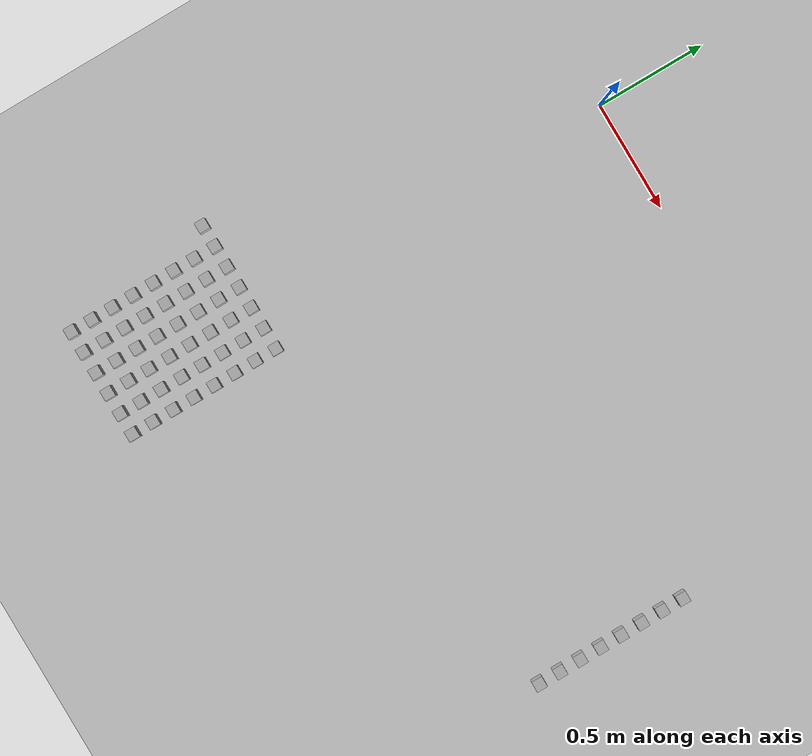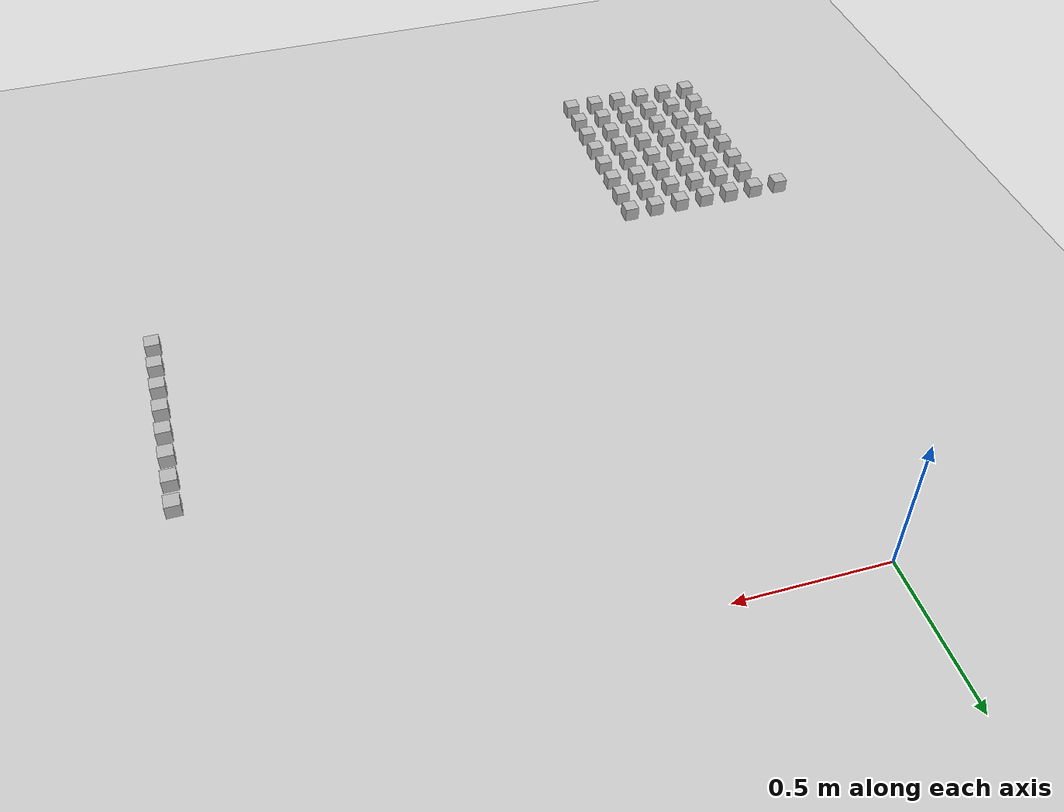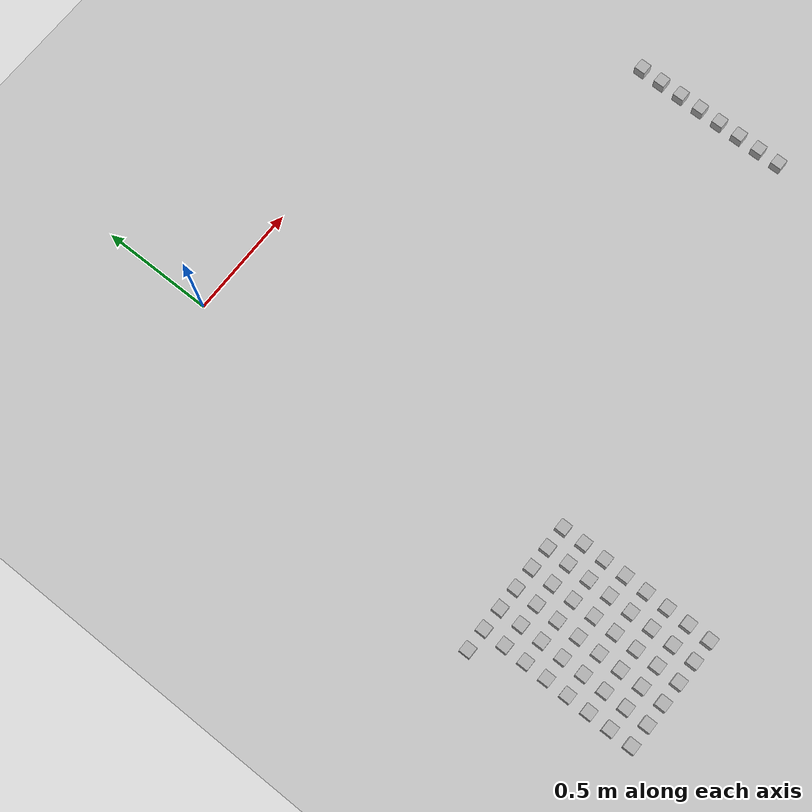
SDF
<sdf version="1.6">
 <world name="default">
  <model name="ground_plane">
   <static>1</static>
   <link name="link">
    <collision name="collision">
     <geometry><plane><normal>0 0 1</normal><size>100 100</size></plane></geometry>
     <surface><friction><ode><mu>100</mu><mu2>50</mu2></ode></friction></surface>
    </collision>
    <visual name="visual">
     <cast_shadows>0</cast_shadows>
     <geometry><plane><normal>0 0 1</normal><size>100 100</size></plane></geometry>
     <material>
      <script><uri>file://media/materials/scripts/gazebo.material</uri><name>Gazebo/Grey</name></script>
     </material>
    </visual>
   </link>
  </model>
  <model name="at256">
   <static>0</static>
   <link name="link">
    <inertial>
     <mass>0.01</mass>
     <inertia><ixx>4e-05</ixx><ixy>0</ixy><ixz>0</ixz><iyy>4e-05</iyy><iyz>0</iyz><izz>4e-05</izz></inertia>
    </inertial>
    <visual name="visual">
     <geometry><box><size>0.05 0.05 0.05</size></box></geometry>
     <material>
      <script>
       <uri>model://at0/materials/scripts</uri>
       <uri>model://at0/materials/textures</uri>
       <name>at0/Diffuse</name>
      </script>
     </material>
    </visual>
    <collision name="collision">
     <geometry><box><size>0.05 0.05 0.05</size></box></geometry>
     <surface><friction><ode><mu>0.8</mu><mu2>0.7</mu2></ode></friction></surface>
    </collision>
   </link>
   <pose>1.95559 -1.46923 0.025 0 -0 0</pose>
  </model>
  <model name="at264">
   <static>0</static>
   <link name="link">
    <inertial>
     <mass>0.01</mass>
     <inertia><ixx>4e-05</ixx><ixy>0</ixy><ixz>0</ixz><iyy>4e-05</iyy><iyz>0</iyz><izz>4e-05</izz></inertia>
    </inertial>
    <visual name="visual">
     <geometry><box><size>0.05 0.05 0.05</size></box></geometry>
     <material>
      <script>
       <uri>model://at0/materials/scripts</uri>
       <uri>model://at0/materials/textures</uri>
       <name>at0/Diffuse</name>
      </script>
     </material>
    </visual>
    <collision name="collision">
     <geometry><box><size>0.05 0.05 0.05</size></box></geometry>
     <surface><friction><ode><mu>0.8</mu><mu2>0.7</mu2></ode></friction></surface>
    </collision>
   </link>
   <pose>1.95559 -1.36923 0.025 0 -0 0</pose>
  </model>
  <model name="at272">
   <static>0</static>
   <link name="link">
    <inertial>
     <mass>0.01</mass>
     <inertia><ixx>4e-05</ixx><ixy>0</ixy><ixz>0</ixz><iyy>4e-05</iyy><iyz>0</iyz><izz>4e-05</izz></inertia>
    </inertial>
    <visual name="visual">
     <geometry><box><size>0.05 0.05 0.05</size></box></geometry>
     <material>
      <script>
       <uri>model://at0/materials/scripts</uri>
       <uri>model://at0/materials/textures</uri>
       <name>at0/Diffuse</name>
      </script>
     </material>
    </visual>
    <collision name="collision">
     <geometry><box><size>0.05 0.05 0.05</size></box></geometry>
     <surface><friction><ode><mu>0.8</mu><mu2>0.7</mu2></ode></friction></surface>
    </collision>
   </link>
   <pose>1.95559 -1.26923 0.025 0 -0 0</pose>
  </model>
  <model name="at280">
   <static>0</static>
   <link name="link">
    <inertial>
     <mass>0.01</mass>
     <inertia><ixx>4e-05</ixx><ixy>0</ixy><ixz>0</ixz><iyy>4e-05</iyy><iyz>0</iyz><izz>4e-05</izz></inertia>
    </inertial>
    <visual name="visual">
     <geometry><box><size>0.05 0.05 0.05</size></box></geometry>
     <material>
      <script>
       <uri>model://at0/materials/scripts</uri>
       <uri>model://at0/materials/textures</uri>
       <name>at0/Diffuse</name>
      </script>
     </material>
    </visual>
    <collision name="collision">
     <geometry><box><size>0.05 0.05 0.05</size></box></geometry>
     <surface><friction><ode><mu>0.8</mu><mu2>0.7</mu2></ode></friction></surface>
    </collision>
   </link>
   <pose>1.95559 -1.16923 0.025 0 -0 0</pose>
  </model>
  <model name="at288">
   <static>0</static>
   <link name="link">
    <inertial>
     <mass>0.01</mass>
     <inertia><ixx>4e-05</ixx><ixy>0</ixy><ixz>0</ixz><iyy>4e-05</iyy><iyz>0</iyz><izz>4e-05</izz></inertia>
    </inertial>
    <visual name="visual">
     <geometry><box><size>0.05 0.05 0.05</size></box></geometry>
     <material>
      <script>
       <uri>model://at0/materials/scripts</uri>
       <uri>model://at0/materials/textures</uri>
       <name>at0/Diffuse</name>
      </script>
     </material>
    </visual>
    <collision name="collision">
     <geometry><box><size>0.05 0.05 0.05</size></box></geometry>
     <surface><friction><ode><mu>0.8</mu><mu2>0.7</mu2></ode></friction></surface>
    </collision>
   </link>
   <pose>1.95559 -1.06923 0.025 0 -0 0</pose>
  </model>
  <model name="at296">
   <static>0</static>
   <link name="link">
    <inertial>
     <mass>0.01</mass>
     <inertia><ixx>4e-05</ixx><ixy>0</ixy><ixz>0</ixz><iyy>4e-05</iyy><iyz>0</iyz><izz>4e-05</izz></inertia>
    </inertial>
    <visual name="visual">
     <geometry><box><size>0.05 0.05 0.05</size></box></geometry>
     <material>
      <script>
       <uri>model://at0/materials/scripts</uri>
       <uri>model://at0/materials/textures</uri>
       <name>at0/Diffuse</name>
      </script>
     </material>
    </visual>
    <collision name="collision">
     <geometry><box><size>0.05 0.05 0.05</size></box></geometry>
     <surface><friction><ode><mu>0.8</mu><mu2>0.7</mu2></ode></friction></surface>
    </collision>
   </link>
   <pose>1.95559 -0.969227 0.025 0 -0 0</pose>
  </model>
  <model name="at304">
   <static>0</static>
   <link name="link">
    <inertial>
     <mass>0.01</mass>
     <inertia><ixx>4e-05</ixx><ixy>0</ixy><ixz>0</ixz><iyy>4e-05</iyy><iyz>0</iyz><izz>4e-05</izz></inertia>
    </inertial>
    <visual name="visual">
     <geometry><box><size>0.05 0.05 0.05</size></box></geometry>
     <material>
      <script>
       <uri>model://at0/materials/scripts</uri>
       <uri>model://at0/materials/textures</uri>
       <name>at0/Diffuse</name>
      </script>
     </material>
    </visual>
    <collision name="collision">
     <geometry><box><size>0.05 0.05 0.05</size></box></geometry>
     <surface><friction><ode><mu>0.8</mu><mu2>0.7</mu2></ode></friction></surface>
    </collision>
   </link>
   <pose>1.95559 -0.869227 0.025 0 -0 0</pose>
  </model>
  <model name="at312">
   <static>0</static>
   <link name="link">
    <inertial>
     <mass>0.01</mass>
     <inertia><ixx>4e-05</ixx><ixy>0</ixy><ixz>0</ixz><iyy>4e-05</iyy><iyz>0</iyz><izz>4e-05</izz></inertia>
    </inertial>
    <visual name="visual">
     <geometry><box><size>0.05 0.05 0.05</size></box></geometry>
     <material>
      <script>
       <uri>model://at0/materials/scripts</uri>
       <uri>model://at0/materials/textures</uri>
       <name>at0/Diffuse</name>
      </script>
     </material>
    </visual>
    <collision name="collision">
     <geometry><box><size>0.05 0.05 0.05</size></box></geometry>
     <surface><friction><ode><mu>0.8</mu><mu2>0.7</mu2></ode></friction></surface>
    </collision>
   </link>
   <pose>1.95559 -0.769227 0.025 0 -0 0</pose>
  </model>
  <model name="at322">
   <static>0</static>
   <link name="link">
    <inertial>
     <mass>0.01</mass>
     <inertia><ixx>4e-05</ixx><ixy>0</ixy><ixz>0</ixz><iyy>4e-05</iyy><iyz>0</iyz><izz>4e-05</izz></inertia>
    </inertial>
    <visual name="visual">
     <geometry><box><size>0.05 0.05 0.05</size></box></geometry>
     <material>
      <script>
       <uri>model://at0/materials/scripts</uri>
       <uri>model://at0/materials/textures</uri>
       <name>at0/Diffuse</name>
      </script>
     </material>
    </visual>
    <collision name="collision">
     <geometry><box><size>0.05 0.05 0.05</size></box></geometry>
     <surface><friction><ode><mu>0.8</mu><mu2>0.7</mu2></ode></friction></surface>
    </collision>
   </link>
   <pose>-0.319724 -2.398 0.025 0 -0 0</pose>
  </model>
  <model name="at323">
   <static>0</static>
   <link name="link">
    <inertial>
     <mass>0.01</mass>
     <inertia><ixx>4e-05</ixx><ixy>0</ixy><ixz>0</ixz><iyy>4e-05</iyy><iyz>0</iyz><izz>4e-05</izz></inertia>
    </inertial>
    <visual name="visual">
     <geometry><box><size>0.05 0.05 0.05</size></box></geometry>
     <material>
      <script>
       <uri>model://at0/materials/scripts</uri>
       <uri>model://at0/materials/textures</uri>
       <name>at0/Diffuse</name>
      </script>
     </material>
    </visual>
    <collision name="collision">
     <geometry><box><size>0.05 0.05 0.05</size></box></geometry>
     <surface><friction><ode><mu>0.8</mu><mu2>0.7</mu2></ode></friction></surface>
    </collision>
   </link>
   <pose>-0.219724 -2.398 0.025 0 -0 0</pose>
  </model>
  <model name="at324">
   <static>0</static>
   <link name="link">
    <inertial>
     <mass>0.01</mass>
     <inertia><ixx>4e-05</ixx><ixy>0</ixy><ixz>0</ixz><iyy>4e-05</iyy><iyz>0</iyz><izz>4e-05</izz></inertia>
    </inertial>
    <visual name="visual">
     <geometry><box><size>0.05 0.05 0.05</size></box></geometry>
     <material>
      <script>
       <uri>model://at0/materials/scripts</uri>
       <uri>model://at0/materials/textures</uri>
       <name>at0/Diffuse</name>
      </script>
     </material>
    </visual>
    <collision name="collision">
     <geometry><box><size>0.05 0.05 0.05</size></box></geometry>
     <surface><friction><ode><mu>0.8</mu><mu2>0.7</mu2></ode></friction></surface>
    </collision>
   </link>
   <pose>-0.119724 -2.398 0.025 0 -0 0</pose>
  </model>
  <model name="at325">
   <static>0</static>
   <link name="link">
    <inertial>
     <mass>0.01</mass>
     <inertia><ixx>4e-05</ixx><ixy>0</ixy><ixz>0</ixz><iyy>4e-05</iyy><iyz>0</iyz><izz>4e-05</izz></inertia>
    </inertial>
    <visual name="visual">
     <geometry><box><size>0.05 0.05 0.05</size></box></geometry>
     <material>
      <script>
       <uri>model://at0/materials/scripts</uri>
       <uri>model://at0/materials/textures</uri>
       <name>at0/Diffuse</name>
      </script>
     </material>
    </visual>
    <collision name="collision">
     <geometry><box><size>0.05 0.05 0.05</size></box></geometry>
     <surface><friction><ode><mu>0.8</mu><mu2>0.7</mu2></ode></friction></surface>
    </collision>
   </link>
   <pose>-0.019724 -2.398 0.025 0 -0 0</pose>
  </model>
  <model name="at326">
   <static>0</static>
   <link name="link">
    <inertial>
     <mass>0.01</mass>
     <inertia><ixx>4e-05</ixx><ixy>0</ixy><ixz>0</ixz><iyy>4e-05</iyy><iyz>0</iyz><izz>4e-05</izz></inertia>
    </inertial>
    <visual name="visual">
     <geometry><box><size>0.05 0.05 0.05</size></box></geometry>
     <material>
      <script>
       <uri>model://at0/materials/scripts</uri>
       <uri>model://at0/materials/textures</uri>
       <name>at0/Diffuse</name>
      </script>
     </material>
    </visual>
    <collision name="collision">
     <geometry><box><size>0.05 0.05 0.05</size></box></geometry>
     <surface><friction><ode><mu>0.8</mu><mu2>0.7</mu2></ode></friction></surface>
    </collision>
   </link>
   <pose>0.080276 -2.398 0.025 0 -0 0</pose>
  </model>
  <model name="at327">
   <static>0</static>
   <link name="link">
    <inertial>
     <mass>0.01</mass>
     <inertia><ixx>4e-05</ixx><ixy>0</ixy><ixz>0</ixz><iyy>4e-05</iyy><iyz>0</iyz><izz>4e-05</izz></inertia>
    </inertial>
    <visual name="visual">
     <geometry><box><size>0.05 0.05 0.05</size></box></geometry>
     <material>
      <script>
       <uri>model://at0/materials/scripts</uri>
       <uri>model://at0/materials/textures</uri>
       <name>at0/Diffuse</name>
      </script>
     </material>
    </visual>
    <collision name="collision">
     <geometry><box><size>0.05 0.05 0.05</size></box></geometry>
     <surface><friction><ode><mu>0.8</mu><mu2>0.7</mu2></ode></friction></surface>
    </collision>
   </link>
   <pose>0.180276 -2.398 0.025 0 -0 0</pose>
  </model>
  <model name="at330">
   <static>0</static>
   <link name="link">
    <inertial>
     <mass>0.01</mass>
     <inertia><ixx>4e-05</ixx><ixy>0</ixy><ixz>0</ixz><iyy>4e-05</iyy><iyz>0</iyz><izz>4e-05</izz></inertia>
    </inertial>
    <visual name="visual">
     <geometry><box><size>0.05 0.05 0.05</size></box></geometry>
     <material>
      <script>
       <uri>model://at0/materials/scripts</uri>
       <uri>model://at0/materials/textures</uri>
       <name>at0/Diffuse</name>
      </script>
     </material>
    </visual>
    <collision name="collision">
     <geometry><box><size>0.05 0.05 0.05</size></box></geometry>
     <surface><friction><ode><mu>0.8</mu><mu2>0.7</mu2></ode></friction></surface>
    </collision>
   </link>
   <pose>-0.319724 -2.298 0.025 0 -0 0</pose>
  </model>
  <model name="at331">
   <static>0</static>
   <link name="link">
    <inertial>
     <mass>0.01</mass>
     <inertia><ixx>4e-05</ixx><ixy>0</ixy><ixz>0</ixz><iyy>4e-05</iyy><iyz>0</iyz><izz>4e-05</izz></inertia>
    </inertial>
    <visual name="visual">
     <geometry><box><size>0.05 0.05 0.05</size></box></geometry>
     <material>
      <script>
       <uri>model://at0/materials/scripts</uri>
       <uri>model://at0/materials/textures</uri>
       <name>at0/Diffuse</name>
      </script>
     </material>
    </visual>
    <collision name="collision">
     <geometry><box><size>0.05 0.05 0.05</size></box></geometry>
     <surface><friction><ode><mu>0.8</mu><mu2>0.7</mu2></ode></friction></surface>
    </collision>
   </link>
   <pose>-0.219724 -2.298 0.025 0 -0 0</pose>
  </model>
  <model name="at332">
   <static>0</static>
   <link name="link">
    <inertial>
     <mass>0.01</mass>
     <inertia><ixx>4e-05</ixx><ixy>0</ixy><ixz>0</ixz><iyy>4e-05</iyy><iyz>0</iyz><izz>4e-05</izz></inertia>
    </inertial>
    <visual name="visual">
     <geometry><box><size>0.05 0.05 0.05</size></box></geometry>
     <material>
      <script>
       <uri>model://at0/materials/scripts</uri>
       <uri>model://at0/materials/textures</uri>
       <name>at0/Diffuse</name>
      </script>
     </material>
    </visual>
    <collision name="collision">
     <geometry><box><size>0.05 0.05 0.05</size></box></geometry>
     <surface><friction><ode><mu>0.8</mu><mu2>0.7</mu2></ode></friction></surface>
    </collision>
   </link>
   <pose>-0.119724 -2.298 0.025 0 -0 0</pose>
  </model>
  <model name="at333">
   <static>0</static>
   <link name="link">
    <inertial>
     <mass>0.01</mass>
     <inertia><ixx>4e-05</ixx><ixy>0</ixy><ixz>0</ixz><iyy>4e-05</iyy><iyz>0</iyz><izz>4e-05</izz></inertia>
    </inertial>
    <visual name="visual">
     <geometry><box><size>0.05 0.05 0.05</size></box></geometry>
     <material>
      <script>
       <uri>model://at0/materials/scripts</uri>
       <uri>model://at0/materials/textures</uri>
       <name>at0/Diffuse</name>
      </script>
     </material>
    </visual>
    <collision name="collision">
     <geometry><box><size>0.05 0.05 0.05</size></box></geometry>
     <surface><friction><ode><mu>0.8</mu><mu2>0.7</mu2></ode></friction></surface>
    </collision>
   </link>
   <pose>-0.019724 -2.298 0.025 0 -0 0</pose>
  </model>
  <model name="at334">
   <static>0</static>
   <link name="link">
    <inertial>
     <mass>0.01</mass>
     <inertia><ixx>4e-05</ixx><ixy>0</ixy><ixz>0</ixz><iyy>4e-05</iyy><iyz>0</iyz><izz>4e-05</izz></inertia>
    </inertial>
    <visual name="visual">
     <geometry><box><size>0.05 0.05 0.05</size></box></geometry>
     <material>
      <script>
       <uri>model://at0/materials/scripts</uri>
       <uri>model://at0/materials/textures</uri>
       <name>at0/Diffuse</name>
      </script>
     </material>
    </visual>
    <collision name="collision">
     <geometry><box><size>0.05 0.05 0.05</size></box></geometry>
     <surface><friction><ode><mu>0.8</mu><mu2>0.7</mu2></ode></friction></surface>
    </collision>
   </link>
   <pose>0.080276 -2.298 0.025 0 -0 0</pose>
  </model>
  <model name="at335">
   <static>0</static>
   <link name="link">
    <inertial>
     <mass>0.01</mass>
     <inertia><ixx>4e-05</ixx><ixy>0</ixy><ixz>0</ixz><iyy>4e-05</iyy><iyz>0</iyz><izz>4e-05</izz></inertia>
    </inertial>
    <visual name="visual">
     <geometry><box><size>0.05 0.05 0.05</size></box></geometry>
     <material>
      <script>
       <uri>model://at0/materials/scripts</uri>
       <uri>model://at0/materials/textures</uri>
       <name>at0/Diffuse</name>
      </script>
     </material>
    </visual>
    <collision name="collision">
     <geometry><box><size>0.05 0.05 0.05</size></box></geometry>
     <surface><friction><ode><mu>0.8</mu><mu2>0.7</mu2></ode></friction></surface>
    </collision>
   </link>
   <pose>0.180276 -2.298 0.025 0 -0 0</pose>
  </model>
  <model name="at338">
   <static>0</static>
   <link name="link">
    <inertial>
     <mass>0.01</mass>
     <inertia><ixx>4e-05</ixx><ixy>0</ixy><ixz>0</ixz><iyy>4e-05</iyy><iyz>0</iyz><izz>4e-05</izz></inertia>
    </inertial>
    <visual name="visual">
     <geometry><box><size>0.05 0.05 0.05</size></box></geometry>
     <material>
      <script>
       <uri>model://at0/materials/scripts</uri>
       <uri>model://at0/materials/textures</uri>
       <name>at0/Diffuse</name>
      </script>
     </material>
    </visual>
    <collision name="collision">
     <geometry><box><size>0.05 0.05 0.05</size></box></geometry>
     <surface><friction><ode><mu>0.8</mu><mu2>0.7</mu2></ode></friction></surface>
    </collision>
   </link>
   <pose>-0.319724 -2.198 0.025 0 -0 0</pose>
  </model>
  <model name="at339">
   <static>0</static>
   <link name="link">
    <inertial>
     <mass>0.01</mass>
     <inertia><ixx>4e-05</ixx><ixy>0</ixy><ixz>0</ixz><iyy>4e-05</iyy><iyz>0</iyz><izz>4e-05</izz></inertia>
    </inertial>
    <visual name="visual">
     <geometry><box><size>0.05 0.05 0.05</size></box></geometry>
     <material>
      <script>
       <uri>model://at0/materials/scripts</uri>
       <uri>model://at0/materials/textures</uri>
       <name>at0/Diffuse</name>
      </script>
     </material>
    </visual>
    <collision name="collision">
     <geometry><box><size>0.05 0.05 0.05</size></box></geometry>
     <surface><friction><ode><mu>0.8</mu><mu2>0.7</mu2></ode></friction></surface>
    </collision>
   </link>
   <pose>-0.219724 -2.198 0.025 0 -0 0</pose>
  </model>
  <model name="at340">
   <static>0</static>
   <link name="link">
    <inertial>
     <mass>0.01</mass>
     <inertia><ixx>4e-05</ixx><ixy>0</ixy><ixz>0</ixz><iyy>4e-05</iyy><iyz>0</iyz><izz>4e-05</izz></inertia>
    </inertial>
    <visual name="visual">
     <geometry><box><size>0.05 0.05 0.05</size></box></geometry>
     <material>
      <script>
       <uri>model://at0/materials/scripts</uri>
       <uri>model://at0/materials/textures</uri>
       <name>at0/Diffuse</name>
      </script>
     </material>
    </visual>
    <collision name="collision">
     <geometry><box><size>0.05 0.05 0.05</size></box></geometry>
     <surface><friction><ode><mu>0.8</mu><mu2>0.7</mu2></ode></friction></surface>
    </collision>
   </link>
   <pose>-0.119724 -2.198 0.025 0 -0 0</pose>
  </model>
  <model name="at341">
   <static>0</static>
   <link name="link">
    <inertial>
     <mass>0.01</mass>
     <inertia><ixx>4e-05</ixx><ixy>0</ixy><ixz>0</ixz><iyy>4e-05</iyy><iyz>0</iyz><izz>4e-05</izz></inertia>
    </inertial>
    <visual name="visual">
     <geometry><box><size>0.05 0.05 0.05</size></box></geometry>
     <material>
      <script>
       <uri>model://at0/materials/scripts</uri>
       <uri>model://at0/materials/textures</uri>
       <name>at0/Diffuse</name>
      </script>
     </material>
    </visual>
    <collision name="collision">
     <geometry><box><size>0.05 0.05 0.05</size></box></geometry>
     <surface><friction><ode><mu>0.8</mu><mu2>0.7</mu2></ode></friction></surface>
    </collision>
   </link>
   <pose>-0.019724 -2.198 0.025 0 -0 0</pose>
  </model>
  <model name="at342">
   <static>0</static>
   <link name="link">
    <inertial>
     <mass>0.01</mass>
     <inertia><ixx>4e-05</ixx><ixy>0</ixy><ixz>0</ixz><iyy>4e-05</iyy><iyz>0</iyz><izz>4e-05</izz></inertia>
    </inertial>
    <visual name="visual">
     <geometry><box><size>0.05 0.05 0.05</size></box></geometry>
     <material>
      <script>
       <uri>model://at0/materials/scripts</uri>
       <uri>model://at0/materials/textures</uri>
       <name>at0/Diffuse</name>
      </script>
     </material>
    </visual>
    <collision name="collision">
     <geometry><box><size>0.05 0.05 0.05</size></box></geometry>
     <surface><friction><ode><mu>0.8</mu><mu2>0.7</mu2></ode></friction></surface>
    </collision>
   </link>
   <pose>0.080276 -2.198 0.025 0 -0 0</pose>
  </model>
  <model name="at343">
   <static>0</static>
   <link name="link">
    <inertial>
     <mass>0.01</mass>
     <inertia><ixx>4e-05</ixx><ixy>0</ixy><ixz>0</ixz><iyy>4e-05</iyy><iyz>0</iyz><izz>4e-05</izz></inertia>
    </inertial>
    <visual name="visual">
     <geometry><box><size>0.05 0.05 0.05</size></box></geometry>
     <material>
      <script>
       <uri>model://at0/materials/scripts</uri>
       <uri>model://at0/materials/textures</uri>
       <name>at0/Diffuse</name>
      </script>
     </material>
    </visual>
    <collision name="collision">
     <geometry><box><size>0.05 0.05 0.05</size></box></geometry>
     <surface><friction><ode><mu>0.8</mu><mu2>0.7</mu2></ode></friction></surface>
    </collision>
   </link>
   <pose>0.180276 -2.198 0.025 0 -0 0</pose>
  </model>
  <model name="at346">
   <static>0</static>
   <link name="link">
    <inertial>
     <mass>0.01</mass>
     <inertia><ixx>4e-05</ixx><ixy>0</ixy><ixz>0</ixz><iyy>4e-05</iyy><iyz>0</iyz><izz>4e-05</izz></inertia>
    </inertial>
    <visual name="visual">
     <geometry><box><size>0.05 0.05 0.05</size></box></geometry>
     <material>
      <script>
       <uri>model://at0/materials/scripts</uri>
       <uri>model://at0/materials/textures</uri>
       <name>at0/Diffuse</name>
      </script>
     </material>
    </visual>
    <collision name="collision">
     <geometry><box><size>0.05 0.05 0.05</size></box></geometry>
     <surface><friction><ode><mu>0.8</mu><mu2>0.7</mu2></ode></friction></surface>
    </collision>
   </link>
   <pose>-0.319724 -2.098 0.025 0 -0 0</pose>
  </model>
  <model name="at347">
   <static>0</static>
   <link name="link">
    <inertial>
     <mass>0.01</mass>
     <inertia><ixx>4e-05</ixx><ixy>0</ixy><ixz>0</ixz><iyy>4e-05</iyy><iyz>0</iyz><izz>4e-05</izz></inertia>
    </inertial>
    <visual name="visual">
     <geometry><box><size>0.05 0.05 0.05</size></box></geometry>
     <material>
      <script>
       <uri>model://at0/materials/scripts</uri>
       <uri>model://at0/materials/textures</uri>
       <name>at0/Diffuse</name>
      </script>
     </material>
    </visual>
    <collision name="collision">
     <geometry><box><size>0.05 0.05 0.05</size></box></geometry>
     <surface><friction><ode><mu>0.8</mu><mu2>0.7</mu2></ode></friction></surface>
    </collision>
   </link>
   <pose>-0.219724 -2.098 0.025 0 -0 0</pose>
  </model>
  <model name="at348">
   <static>0</static>
   <link name="link">
    <inertial>
     <mass>0.01</mass>
     <inertia><ixx>4e-05</ixx><ixy>0</ixy><ixz>0</ixz><iyy>4e-05</iyy><iyz>0</iyz><izz>4e-05</izz></inertia>
    </inertial>
    <visual name="visual">
     <geometry><box><size>0.05 0.05 0.05</size></box></geometry>
     <material>
      <script>
       <uri>model://at0/materials/scripts</uri>
       <uri>model://at0/materials/textures</uri>
       <name>at0/Diffuse</name>
      </script>
     </material>
    </visual>
    <collision name="collision">
     <geometry><box><size>0.05 0.05 0.05</size></box></geometry>
     <surface><friction><ode><mu>0.8</mu><mu2>0.7</mu2></ode></friction></surface>
    </collision>
   </link>
   <pose>-0.119724 -2.098 0.025 0 -0 0</pose>
  </model>
  <model name="at349">
   <static>0</static>
   <link name="link">
    <inertial>
     <mass>0.01</mass>
     <inertia><ixx>4e-05</ixx><ixy>0</ixy><ixz>0</ixz><iyy>4e-05</iyy><iyz>0</iyz><izz>4e-05</izz></inertia>
    </inertial>
    <visual name="visual">
     <geometry><box><size>0.05 0.05 0.05</size></box></geometry>
     <material>
      <script>
       <uri>model://at0/materials/scripts</uri>
       <uri>model://at0/materials/textures</uri>
       <name>at0/Diffuse</name>
      </script>
     </material>
    </visual>
    <collision name="collision">
     <geometry><box><size>0.05 0.05 0.05</size></box></geometry>
     <surface><friction><ode><mu>0.8</mu><mu2>0.7</mu2></ode></friction></surface>
    </collision>
   </link>
   <pose>-0.019724 -2.098 0.025 0 -0 0</pose>
  </model>
  <model name="at350">
   <static>0</static>
   <link name="link">
    <inertial>
     <mass>0.01</mass>
     <inertia><ixx>4e-05</ixx><ixy>0</ixy><ixz>0</ixz><iyy>4e-05</iyy><iyz>0</iyz><izz>4e-05</izz></inertia>
    </inertial>
    <visual name="visual">
     <geometry><box><size>0.05 0.05 0.05</size></box></geometry>
     <material>
      <script>
       <uri>model://at0/materials/scripts</uri>
       <uri>model://at0/materials/textures</uri>
       <name>at0/Diffuse</name>
      </script>
     </material>
    </visual>
    <collision name="collision">
     <geometry><box><size>0.05 0.05 0.05</size></box></geometry>
     <surface><friction><ode><mu>0.8</mu><mu2>0.7</mu2></ode></friction></surface>
    </collision>
   </link>
   <pose>0.080276 -2.098 0.025 0 -0 0</pose>
  </model>
  <model name="at351">
   <static>0</static>
   <link name="link">
    <inertial>
     <mass>0.01</mass>
     <inertia><ixx>4e-05</ixx><ixy>0</ixy><ixz>0</ixz><iyy>4e-05</iyy><iyz>0</iyz><izz>4e-05</izz></inertia>
    </inertial>
    <visual name="visual">
     <geometry><box><size>0.05 0.05 0.05</size></box></geometry>
     <material>
      <script>
       <uri>model://at0/materials/scripts</uri>
       <uri>model://at0/materials/textures</uri>
       <name>at0/Diffuse</name>
      </script>
     </material>
    </visual>
    <collision name="collision">
     <geometry><box><size>0.05 0.05 0.05</size></box></geometry>
     <surface><friction><ode><mu>0.8</mu><mu2>0.7</mu2></ode></friction></surface>
    </collision>
   </link>
   <pose>0.180276 -2.098 0.025 0 -0 0</pose>
  </model>
  <model name="at354">
   <static>0</static>
   <link name="link">
    <inertial>
     <mass>0.01</mass>
     <inertia><ixx>4e-05</ixx><ixy>0</ixy><ixz>0</ixz><iyy>4e-05</iyy><iyz>0</iyz><izz>4e-05</izz></inertia>
    </inertial>
    <visual name="visual">
     <geometry><box><size>0.05 0.05 0.05</size></box></geometry>
     <material>
      <script>
       <uri>model://at0/materials/scripts</uri>
       <uri>model://at0/materials/textures</uri>
       <name>at0/Diffuse</name>
      </script>
     </material>
    </visual>
    <collision name="collision">
     <geometry><box><size>0.05 0.05 0.05</size></box></geometry>
     <surface><friction><ode><mu>0.8</mu><mu2>0.7</mu2></ode></friction></surface>
    </collision>
   </link>
   <pose>-0.319724 -1.998 0.025 0 -0 0</pose>
  </model>
  <model name="at355">
   <static>0</static>
   <link name="link">
    <inertial>
     <mass>0.01</mass>
     <inertia><ixx>4e-05</ixx><ixy>0</ixy><ixz>0</ixz><iyy>4e-05</iyy><iyz>0</iyz><izz>4e-05</izz></inertia>
    </inertial>
    <visual name="visual">
     <geometry><box><size>0.05 0.05 0.05</size></box></geometry>
     <material>
      <script>
       <uri>model://at0/materials/scripts</uri>
       <uri>model://at0/materials/textures</uri>
       <name>at0/Diffuse</name>
      </script>
     </material>
    </visual>
    <collision name="collision">
     <geometry><box><size>0.05 0.05 0.05</size></box></geometry>
     <surface><friction><ode><mu>0.8</mu><mu2>0.7</mu2></ode></friction></surface>
    </collision>
   </link>
   <pose>-0.219724 -1.998 0.025 0 -0 0</pose>
  </model>
  <model name="at356">
   <static>0</static>
   <link name="link">
    <inertial>
     <mass>0.01</mass>
     <inertia><ixx>4e-05</ixx><ixy>0</ixy><ixz>0</ixz><iyy>4e-05</iyy><iyz>0</iyz><izz>4e-05</izz></inertia>
    </inertial>
    <visual name="visual">
     <geometry><box><size>0.05 0.05 0.05</size></box></geometry>
     <material>
      <script>
       <uri>model://at0/materials/scripts</uri>
       <uri>model://at0/materials/textures</uri>
       <name>at0/Diffuse</name>
      </script>
     </material>
    </visual>
    <collision name="collision">
     <geometry><box><size>0.05 0.05 0.05</size></box></geometry>
     <surface><friction><ode><mu>0.8</mu><mu2>0.7</mu2></ode></friction></surface>
    </collision>
   </link>
   <pose>-0.119724 -1.998 0.025 0 -0 0</pose>
  </model>
  <model name="at357">
   <static>0</static>
   <link name="link">
    <inertial>
     <mass>0.01</mass>
     <inertia><ixx>4e-05</ixx><ixy>0</ixy><ixz>0</ixz><iyy>4e-05</iyy><iyz>0</iyz><izz>4e-05</izz></inertia>
    </inertial>
    <visual name="visual">
     <geometry><box><size>0.05 0.05 0.05</size></box></geometry>
     <material>
      <script>
       <uri>model://at0/materials/scripts</uri>
       <uri>model://at0/materials/textures</uri>
       <name>at0/Diffuse</name>
      </script>
     </material>
    </visual>
    <collision name="collision">
     <geometry><box><size>0.05 0.05 0.05</size></box></geometry>
     <surface><friction><ode><mu>0.8</mu><mu2>0.7</mu2></ode></friction></surface>
    </collision>
   </link>
   <pose>-0.019724 -1.998 0.025 0 -0 0</pose>
  </model>
  <model name="at358">
   <static>0</static>
   <link name="link">
    <inertial>
     <mass>0.01</mass>
     <inertia><ixx>4e-05</ixx><ixy>0</ixy><ixz>0</ixz><iyy>4e-05</iyy><iyz>0</iyz><izz>4e-05</izz></inertia>
    </inertial>
    <visual name="visual">
     <geometry><box><size>0.05 0.05 0.05</size></box></geometry>
     <material>
      <script>
       <uri>model://at0/materials/scripts</uri>
       <uri>model://at0/materials/textures</uri>
       <name>at0/Diffuse</name>
      </script>
     </material>
    </visual>
    <collision name="collision">
     <geometry><box><size>0.05 0.05 0.05</size></box></geometry>
     <surface><friction><ode><mu>0.8</mu><mu2>0.7</mu2></ode></friction></surface>
    </collision>
   </link>
   <pose>0.080276 -1.998 0.025 0 -0 0</pose>
  </model>
  <model name="at359">
   <static>0</static>
   <link name="link">
    <inertial>
     <mass>0.01</mass>
     <inertia><ixx>4e-05</ixx><ixy>0</ixy><ixz>0</ixz><iyy>4e-05</iyy><iyz>0</iyz><izz>4e-05</izz></inertia>
    </inertial>
    <visual name="visual">
     <geometry><box><size>0.05 0.05 0.05</size></box></geometry>
     <material>
      <script>
       <uri>model://at0/materials/scripts</uri>
       <uri>model://at0/materials/textures</uri>
       <name>at0/Diffuse</name>
      </script>
     </material>
    </visual>
    <collision name="collision">
     <geometry><box><size>0.05 0.05 0.05</size></box></geometry>
     <surface><friction><ode><mu>0.8</mu><mu2>0.7</mu2></ode></friction></surface>
    </collision>
   </link>
   <pose>0.180276 -1.998 0.025 0 -0 0</pose>
  </model>
  <model name="at362">
   <static>0</static>
   <link name="link">
    <inertial>
     <mass>0.01</mass>
     <inertia><ixx>4e-05</ixx><ixy>0</ixy><ixz>0</ixz><iyy>4e-05</iyy><iyz>0</iyz><izz>4e-05</izz></inertia>
    </inertial>
    <visual name="visual">
     <geometry><box><size>0.05 0.05 0.05</size></box></geometry>
     <material>
      <script>
       <uri>model://at0/materials/scripts</uri>
       <uri>model://at0/materials/textures</uri>
       <name>at0/Diffuse</name>
      </script>
     </material>
    </visual>
    <collision name="collision">
     <geometry><box><size>0.05 0.05 0.05</size></box></geometry>
     <surface><friction><ode><mu>0.8</mu><mu2>0.7</mu2></ode></friction></surface>
    </collision>
   </link>
   <pose>-0.319724 -1.898 0.025 0 -0 0</pose>
  </model>
  <model name="at363">
   <static>0</static>
   <link name="link">
    <inertial>
     <mass>0.01</mass>
     <inertia><ixx>4e-05</ixx><ixy>0</ixy><ixz>0</ixz><iyy>4e-05</iyy><iyz>0</iyz><izz>4e-05</izz></inertia>
    </inertial>
    <visual name="visual">
     <geometry><box><size>0.05 0.05 0.05</size></box></geometry>
     <material>
      <script>
       <uri>model://at0/materials/scripts</uri>
       <uri>model://at0/materials/textures</uri>
       <name>at0/Diffuse</name>
      </script>
     </material>
    </visual>
    <collision name="collision">
     <geometry><box><size>0.05 0.05 0.05</size></box></geometry>
     <surface><friction><ode><mu>0.8</mu><mu2>0.7</mu2></ode></friction></surface>
    </collision>
   </link>
   <pose>-0.219724 -1.898 0.025 0 -0 0</pose>
  </model>
  <model name="at364">
   <static>0</static>
   <link name="link">
    <inertial>
     <mass>0.01</mass>
     <inertia><ixx>4e-05</ixx><ixy>0</ixy><ixz>0</ixz><iyy>4e-05</iyy><iyz>0</iyz><izz>4e-05</izz></inertia>
    </inertial>
    <visual name="visual">
     <geometry><box><size>0.05 0.05 0.05</size></box></geometry>
     <material>
      <script>
       <uri>model://at0/materials/scripts</uri>
       <uri>model://at0/materials/textures</uri>
       <name>at0/Diffuse</name>
      </script>
     </material>
    </visual>
    <collision name="collision">
     <geometry><box><size>0.05 0.05 0.05</size></box></geometry>
     <surface><friction><ode><mu>0.8</mu><mu2>0.7</mu2></ode></friction></surface>
    </collision>
   </link>
   <pose>-0.119724 -1.898 0.025 0 -0 0</pose>
  </model>
  <model name="at365">
   <static>0</static>
   <link name="link">
    <inertial>
     <mass>0.01</mass>
     <inertia><ixx>4e-05</ixx><ixy>0</ixy><ixz>0</ixz><iyy>4e-05</iyy><iyz>0</iyz><izz>4e-05</izz></inertia>
    </inertial>
    <visual name="visual">
     <geometry><box><size>0.05 0.05 0.05</size></box></geometry>
     <material>
      <script>
       <uri>model://at0/materials/scripts</uri>
       <uri>model://at0/materials/textures</uri>
       <name>at0/Diffuse</name>
      </script>
     </material>
    </visual>
    <collision name="collision">
     <geometry><box><size>0.05 0.05 0.05</size></box></geometry>
     <surface><friction><ode><mu>0.8</mu><mu2>0.7</mu2></ode></friction></surface>
    </collision>
   </link>
   <pose>-0.019724 -1.898 0.025 0 -0 0</pose>
  </model>
  <model name="at366">
   <static>0</static>
   <link name="link">
    <inertial>
     <mass>0.01</mass>
     <inertia><ixx>4e-05</ixx><ixy>0</ixy><ixz>0</ixz><iyy>4e-05</iyy><iyz>0</iyz><izz>4e-05</izz></inertia>
    </inertial>
    <visual name="visual">
     <geometry><box><size>0.05 0.05 0.05</size></box></geometry>
     <material>
      <script>
       <uri>model://at0/materials/scripts</uri>
       <uri>model://at0/materials/textures</uri>
       <name>at0/Diffuse</name>
      </script>
     </material>
    </visual>
    <collision name="collision">
     <geometry><box><size>0.05 0.05 0.05</size></box></geometry>
     <surface><friction><ode><mu>0.8</mu><mu2>0.7</mu2></ode></friction></surface>
    </collision>
   </link>
   <pose>0.080276 -1.898 0.025 0 -0 0</pose>
  </model>
  <model name="at367">
   <static>0</static>
   <link name="link">
    <inertial>
     <mass>0.01</mass>
     <inertia><ixx>4e-05</ixx><ixy>0</ixy><ixz>0</ixz><iyy>4e-05</iyy><iyz>0</iyz><izz>4e-05</izz></inertia>
    </inertial>
    <visual name="visual">
     <geometry><box><size>0.05 0.05 0.05</size></box></geometry>
     <material>
      <script>
       <uri>model://at0/materials/scripts</uri>
       <uri>model://at0/materials/textures</uri>
       <name>at0/Diffuse</name>
      </script>
     </material>
    </visual>
    <collision name="collision">
     <geometry><box><size>0.05 0.05 0.05</size></box></geometry>
     <surface><friction><ode><mu>0.8</mu><mu2>0.7</mu2></ode></friction></surface>
    </collision>
   </link>
   <pose>0.180276 -1.898 0.025 0 -0 0</pose>
  </model>
  <model name="at370">
   <static>0</static>
   <link name="link">
    <inertial>
     <mass>0.01</mass>
     <inertia><ixx>4e-05</ixx><ixy>0</ixy><ixz>0</ixz><iyy>4e-05</iyy><iyz>0</iyz><izz>4e-05</izz></inertia>
    </inertial>
    <visual name="visual">
     <geometry><box><size>0.05 0.05 0.05</size></box></geometry>
     <material>
      <script>
       <uri>model://at0/materials/scripts</uri>
       <uri>model://at0/materials/textures</uri>
       <name>at0/Diffuse</name>
      </script>
     </material>
    </visual>
    <collision name="collision">
     <geometry><box><size>0.05 0.05 0.05</size></box></geometry>
     <surface><friction><ode><mu>0.8</mu><mu2>0.7</mu2></ode></friction></surface>
    </collision>
   </link>
   <pose>-0.319724 -1.798 0.025 0 -0 0</pose>
  </model>
  <model name="at371">
   <static>0</static>
   <link name="link">
    <inertial>
     <mass>0.01</mass>
     <inertia><ixx>4e-05</ixx><ixy>0</ixy><ixz>0</ixz><iyy>4e-05</iyy><iyz>0</iyz><izz>4e-05</izz></inertia>
    </inertial>
    <visual name="visual">
     <geometry><box><size>0.05 0.05 0.05</size></box></geometry>
     <material>
      <script>
       <uri>model://at0/materials/scripts</uri>
       <uri>model://at0/materials/textures</uri>
       <name>at0/Diffuse</name>
      </script>
     </material>
    </visual>
    <collision name="collision">
     <geometry><box><size>0.05 0.05 0.05</size></box></geometry>
     <surface><friction><ode><mu>0.8</mu><mu2>0.7</mu2></ode></friction></surface>
    </collision>
   </link>
   <pose>-0.219724 -1.798 0.025 0 -0 0</pose>
  </model>
  <model name="at372">
   <static>0</static>
   <link name="link">
    <inertial>
     <mass>0.01</mass>
     <inertia><ixx>4e-05</ixx><ixy>0</ixy><ixz>0</ixz><iyy>4e-05</iyy><iyz>0</iyz><izz>4e-05</izz></inertia>
    </inertial>
    <visual name="visual">
     <geometry><box><size>0.05 0.05 0.05</size></box></geometry>
     <material>
      <script>
       <uri>model://at0/materials/scripts</uri>
       <uri>model://at0/materials/textures</uri>
       <name>at0/Diffuse</name>
      </script>
     </material>
    </visual>
    <collision name="collision">
     <geometry><box><size>0.05 0.05 0.05</size></box></geometry>
     <surface><friction><ode><mu>0.8</mu><mu2>0.7</mu2></ode></friction></surface>
    </collision>
   </link>
   <pose>-0.119724 -1.798 0.025 0 -0 0</pose>
  </model>
  <model name="at373">
   <static>0</static>
   <link name="link">
    <inertial>
     <mass>0.01</mass>
     <inertia><ixx>4e-05</ixx><ixy>0</ixy><ixz>0</ixz><iyy>4e-05</iyy><iyz>0</iyz><izz>4e-05</izz></inertia>
    </inertial>
    <visual name="visual">
     <geometry><box><size>0.05 0.05 0.05</size></box></geometry>
     <material>
      <script>
       <uri>model://at0/materials/scripts</uri>
       <uri>model://at0/materials/textures</uri>
       <name>at0/Diffuse</name>
      </script>
     </material>
    </visual>
    <collision name="collision">
     <geometry><box><size>0.05 0.05 0.05</size></box></geometry>
     <surface><friction><ode><mu>0.8</mu><mu2>0.7</mu2></ode></friction></surface>
    </collision>
   </link>
   <pose>-0.019724 -1.798 0.025 0 -0 0</pose>
  </model>
  <model name="at374">
   <static>0</static>
   <link name="link">
    <inertial>
     <mass>0.01</mass>
     <inertia><ixx>4e-05</ixx><ixy>0</ixy><ixz>0</ixz><iyy>4e-05</iyy><iyz>0</iyz><izz>4e-05</izz></inertia>
    </inertial>
    <visual name="visual">
     <geometry><box><size>0.05 0.05 0.05</size></box></geometry>
     <material>
      <script>
       <uri>model://at0/materials/scripts</uri>
       <uri>model://at0/materials/textures</uri>
       <name>at0/Diffuse</name>
      </script>
     </material>
    </visual>
    <collision name="collision">
     <geometry><box><size>0.05 0.05 0.05</size></box></geometry>
     <surface><friction><ode><mu>0.8</mu><mu2>0.7</mu2></ode></friction></surface>
    </collision>
   </link>
   <pose>0.080276 -1.798 0.025 0 -0 0</pose>
  </model>
  <model name="at375">
   <static>0</static>
   <link name="link">
    <inertial>
     <mass>0.01</mass>
     <inertia><ixx>4e-05</ixx><ixy>0</ixy><ixz>0</ixz><iyy>4e-05</iyy><iyz>0</iyz><izz>4e-05</izz></inertia>
    </inertial>
    <visual name="visual">
     <geometry><box><size>0.05 0.05 0.05</size></box></geometry>
     <material>
      <script>
       <uri>model://at0/materials/scripts</uri>
       <uri>model://at0/materials/textures</uri>
       <name>at0/Diffuse</name>
      </script>
     </material>
    </visual>
    <collision name="collision">
     <geometry><box><size>0.05 0.05 0.05</size></box></geometry>
     <surface><friction><ode><mu>0.8</mu><mu2>0.7</mu2></ode></friction></surface>
    </collision>
   </link>
   <pose>0.180276 -1.798 0.025 0 -0 0</pose>
  </model>
  <model name="at377">
   <static>0</static>
   <link name="link">
    <inertial>
     <mass>0.01</mass>
     <inertia><ixx>4e-05</ixx><ixy>0</ixy><ixz>0</ixz><iyy>4e-05</iyy><iyz>0</iyz><izz>4e-05</izz></inertia>
    </inertial>
    <visual name="visual">
     <geometry><box><size>0.05 0.05 0.05</size></box></geometry>
     <material>
      <script>
       <uri>model://at0/materials/scripts</uri>
       <uri>model://at0/materials/textures</uri>
       <name>at0/Diffuse</name>
      </script>
     </material>
    </visual>
    <collision name="collision">
     <geometry><box><size>0.05 0.05 0.05</size></box></geometry>
     <surface><friction><ode><mu>0.8</mu><mu2>0.7</mu2></ode></friction></surface>
    </collision>
   </link>
   <pose>-0.419724 -1.698 0.025 0 -0 0</pose>
  </model>
  <model name="at378">
   <static>0</static>
   <link name="link">
    <inertial>
     <mass>0.01</mass>
     <inertia><ixx>4e-05</ixx><ixy>0</ixy><ixz>0</ixz><iyy>4e-05</iyy><iyz>0</iyz><izz>4e-05</izz></inertia>
    </inertial>
    <visual name="visual">
     <geometry><box><size>0.05 0.05 0.05</size></box></geometry>
     <material>
      <script>
       <uri>model://at0/materials/scripts</uri>
       <uri>model://at0/materials/textures</uri>
       <name>at0/Diffuse</name>
      </script>
     </material>
    </visual>
    <collision name="collision">
     <geometry><box><size>0.05 0.05 0.05</size></box></geometry>
     <surface><friction><ode><mu>0.8</mu><mu2>0.7</mu2></ode></friction></surface>
    </collision>
   </link>
   <pose>-0.319724 -1.698 0.025 0 -0 0</pose>
  </model>
  <model name="at379">
   <static>0</static>
   <link name="link">
    <inertial>
     <mass>0.01</mass>
     <inertia><ixx>4e-05</ixx><ixy>0</ixy><ixz>0</ixz><iyy>4e-05</iyy><iyz>0</iyz><izz>4e-05</izz></inertia>
    </inertial>
    <visual name="visual">
     <geometry><box><size>0.05 0.05 0.05</size></box></geometry>
     <material>
      <script>
       <uri>model://at0/materials/scripts</uri>
       <uri>model://at0/materials/textures</uri>
       <name>at0/Diffuse</name>
      </script>
     </material>
    </visual>
    <collision name="collision">
     <geometry><box><size>0.05 0.05 0.05</size></box></geometry>
     <surface><friction><ode><mu>0.8</mu><mu2>0.7</mu2></ode></friction></surface>
    </collision>
   </link>
   <pose>-0.219724 -1.698 0.025 0 -0 0</pose>
  </model>
  <model name="at380">
   <static>0</static>
   <link name="link">
    <inertial>
     <mass>0.01</mass>
     <inertia><ixx>4e-05</ixx><ixy>0</ixy><ixz>0</ixz><iyy>4e-05</iyy><iyz>0</iyz><izz>4e-05</izz></inertia>
    </inertial>
    <visual name="visual">
     <geometry><box><size>0.05 0.05 0.05</size></box></geometry>
     <material>
      <script>
       <uri>model://at0/materials/scripts</uri>
       <uri>model://at0/materials/textures</uri>
       <name>at0/Diffuse</name>
      </script>
     </material>
    </visual>
    <collision name="collision">
     <geometry><box><size>0.05 0.05 0.05</size></box></geometry>
     <surface><friction><ode><mu>0.8</mu><mu2>0.7</mu2></ode></friction></surface>
    </collision>
   </link>
   <pose>-0.119724 -1.698 0.025 0 -0 0</pose>
  </model>
  <model name="at381">
   <static>0</static>
   <link name="link">
    <inertial>
     <mass>0.01</mass>
     <inertia><ixx>4e-05</ixx><ixy>0</ixy><ixz>0</ixz><iyy>4e-05</iyy><iyz>0</iyz><izz>4e-05</izz></inertia>
    </inertial>
    <visual name="visual">
     <geometry><box><size>0.05 0.05 0.05</size></box></geometry>
     <material>
      <script>
       <uri>model://at0/materials/scripts</uri>
       <uri>model://at0/materials/textures</uri>
       <name>at0/Diffuse</name>
      </script>
     </material>
    </visual>
    <collision name="collision">
     <geometry><box><size>0.05 0.05 0.05</size></box></geometry>
     <surface><friction><ode><mu>0.8</mu><mu2>0.7</mu2></ode></friction></surface>
    </collision>
   </link>
   <pose>-0.019724 -1.698 0.025 0 -0 0</pose>
  </model>
  <model name="at382">
   <static>0</static>
   <link name="link">
    <inertial>
     <mass>0.01</mass>
     <inertia><ixx>4e-05</ixx><ixy>0</ixy><ixz>0</ixz><iyy>4e-05</iyy><iyz>0</iyz><izz>4e-05</izz></inertia>
    </inertial>
    <visual name="visual">
     <geometry><box><size>0.05 0.05 0.05</size></box></geometry>
     <material>
      <script>
       <uri>model://at0/materials/scripts</uri>
       <uri>model://at0/materials/textures</uri>
       <name>at0/Diffuse</name>
      </script>
     </material>
    </visual>
    <collision name="collision">
     <geometry><box><size>0.05 0.05 0.05</size></box></geometry>
     <surface><friction><ode><mu>0.8</mu><mu2>0.7</mu2></ode></friction></surface>
    </collision>
   </link>
   <pose>0.080276 -1.698 0.025 0 -0 0</pose>
  </model>
  <model name="at383">
   <static>0</static>
   <link name="link">
    <inertial>
     <mass>0.01</mass>
     <inertia><ixx>4e-05</ixx><ixy>0</ixy><ixz>0</ixz><iyy>4e-05</iyy><iyz>0</iyz><izz>4e-05</izz></inertia>
    </inertial>
    <visual name="visual">
     <geometry><box><size>0.05 0.05 0.05</size></box></geometry>
     <material>
      <script>
       <uri>model://at0/materials/scripts</uri>
       <uri>model://at0/materials/textures</uri>
       <name>at0/Diffuse</name>
      </script>
     </material>
    </visual>
    <collision name="collision">
     <geometry><box><size>0.05 0.05 0.05</size></box></geometry>
     <surface><friction><ode><mu>0.8</mu><mu2>0.7</mu2></ode></friction></surface>
    </collision>
   </link>
   <pose>0.180276 -1.698 0.025 0 -0 0</pose>
  </model>
 </world>
</sdf>
